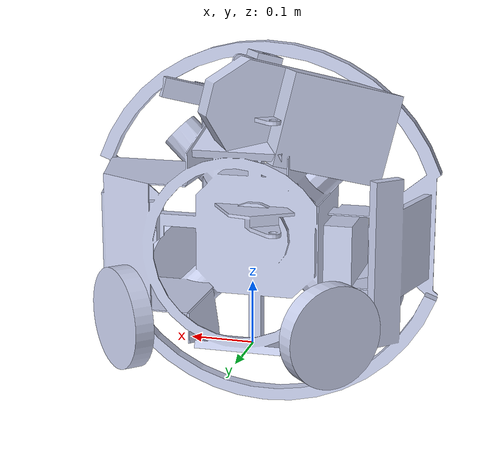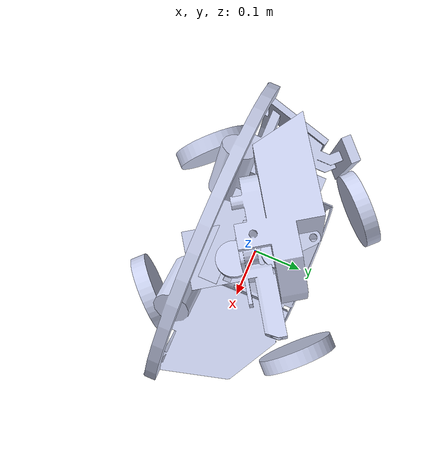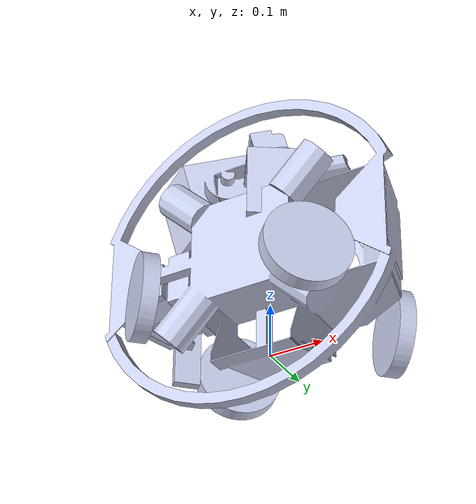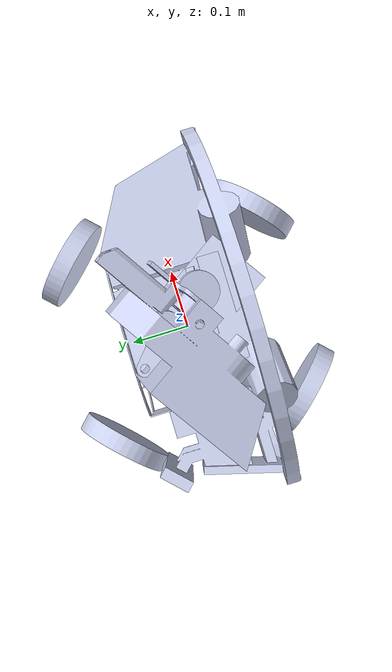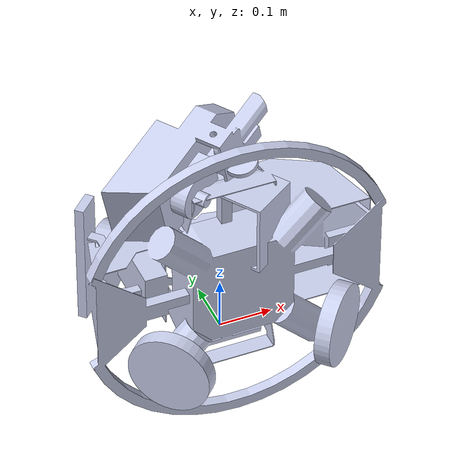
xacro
<?xml version="1.0" encoding="UTF-8"?>
<robot xmlns:xacro="http://wiki.ros.org/xacro" name="omni_infantry">

  <!-- Use this if parameters are set from the launch file, otherwise delete -->
  <xacro:arg name="prefix" default="" />

  <xacro:arg name="use_mock_hardware" default="false" />
  <xacro:arg name="mock_sensor_commands" default="false" />
  <xacro:arg name="sim_gazebo_classic" default="false" />
  <xacro:arg name="sim_gazebo" default="false" />
  <xacro:arg name="simulation_controllers" default="" />

  <xacro:include
    filename="$(find omni_infantry_description)/urdf/omni_infantry/omni_infantry_description.xacro" />
  <xacro:include
    filename="$(find omni_infantry_description)/urdf/omni_infantry/omni_infantry_macro.ros2_control.xacro" />

  <link name="world" />

  <xacro:omni_infantry prefix="$(arg prefix)" parent="world">
    <origin xyz="0 0 0.17" rpy="0 0 0" />
  </xacro:omni_infantry>

  <xacro:omni_infantry_ros2_control
    name="omni_infantry"
    prefix="$(arg prefix)"
    use_mock_hardware="$(arg use_mock_hardware)"
    mock_sensor_commands="$(arg mock_sensor_commands)"
    sim_gazebo_classic="$(arg sim_gazebo_classic)"
    sim_gazebo="$(arg sim_gazebo)"
    simulation_controllers="$(arg simulation_controllers)" />

</robot>

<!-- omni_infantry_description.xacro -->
<robot xmlns:xacro="http://wiki.ros.org/xacro">

  <xacro:include filename="$(find omni_infantry_description)/urdf/common.xacro" />

  <xacro:macro name="omni_infantry" params="prefix parent *origin">
    <!-- LINKS -->
    <link name="${prefix}omni_infantry">
      <inertial>
        <origin
          xyz="-0.014464583145287 -3.47778019611777E-08 -0.0463018865662903"
          rpy="0 0 0" />
        <mass value="7.38762341423434" />
        <inertia
          ixx="0.0858099715349203"
          ixy="9.06674283545546E-08"
          ixz="0.00463615934367856"
          iyy="0.108320017042519"
          iyz="9.21827441556145E-06"
          izz="0.161187478867477" />
      </inertial>
      <visual>
        <origin
          xyz="0 0 0"
          rpy="-1.570796326794896 0 0" />
        <geometry>
          <mesh filename="package://omni_infantry_description/meshes/omni_infantry.STL" />
        </geometry>
        <material name="">
          <color rgba="0.792156862745098 0.819607843137255 0.933333333333333 1" />
        </material>
      </visual>
      <collision>
        <origin
          xyz="0 0 0"
          rpy="-1.570796326794896 0 0" />
        <geometry>
          <mesh filename="package://omni_infantry_description/meshes/omni_infantry.STL" />
        </geometry>
      </collision>
    </link>

    <link name="${prefix}front_left_wheel_link">
      <inertial>
        <origin
          xyz="-0.0145 0 -1.1102E-16"
          rpy="0 0 0" />
        <mass value="0.53318" />
        <inertia
          ixx="0.0015601"
          ixy="1.0842E-19"
          ixz="3.9211E-20"
          iyy="0.00081744"
          iyz="1.0406E-19"
          izz="0.00081744" />
      </inertial>
      <visual>
        <origin
          xyz="0 0 0"
          rpy="0 0 0" />
        <geometry>
          <mesh filename="package://omni_infantry_description/meshes/front_left_wheel_link.STL" />
        </geometry>
        <material name="">
          <color rgba="0.79216 0.81961 0.93333 1" />
        </material>
      </visual>
      <collision>
        <origin
          xyz="0 0 0"
          rpy="0 0 0" />
        <geometry>
          <mesh filename="package://omni_infantry_description/meshes/front_left_wheel_link.STL" />
        </geometry>
      </collision>
    </link>

    <link name="${prefix}front_right_wheel_link">
      <inertial>
        <origin
          xyz="-0.0145 -1.38777878078145E-17 -1.11022302462516E-16"
          rpy="0 0 0" />
        <mass value="0.533176182602155" />
        <inertia
          ixx="0.00156014015731673"
          ixy="0"
          ixz="9.67092878960191E-20"
          iyy="0.000817436842789067"
          iyz="4.59189434683823E-20"
          izz="0.000817436842789066" />
      </inertial>
      <visual>
        <origin
          xyz="0 0 0"
          rpy="0 0 0" />
        <geometry>
          <mesh filename="package://omni_infantry_description/meshes/front_right_wheel_link.STL" />
        </geometry>
        <material name="">
          <color rgba="0.792156862745098 0.819607843137255 0.933333333333333 1" />
        </material>
      </visual>
      <collision>
        <origin
          xyz="0 0 0"
          rpy="0 0 0" />
        <geometry>
          <mesh filename="package://omni_infantry_description/meshes/front_right_wheel_link.STL" />
        </geometry>
      </collision>
    </link>

    <link name="${prefix}back_left_wheel_link">
      <inertial>
        <origin
          xyz="-0.0145 -1.38777878078145E-17 0"
          rpy="0 0 0" />
        <mass value="0.533176182602155" />
        <inertia
          ixx="0.00156014015731673"
          ixy="0"
          ixz="-1.14198415930064E-20"
          iyy="0.000817436842789067"
          iyz="-5.8057516350459E-20"
          izz="0.000817436842789067" />
      </inertial>
      <visual>
        <origin
          xyz="0 0 0"
          rpy="0 0 0" />
        <geometry>
          <mesh filename="package://omni_infantry_description/meshes/back_left_wheel_link.STL" />
        </geometry>
        <material name="">
          <color rgba="0.792156862745098 0.819607843137255 0.933333333333333 1" />
        </material>
      </visual>
      <collision>
        <origin
          xyz="0 0 0"
          rpy="0 0 0" />
        <geometry>
          <mesh filename="package://omni_infantry_description/meshes/back_left_wheel_link.STL" />
        </geometry>
      </collision>
    </link>

    <link name="${prefix}back_right_wheel_link">
      <inertial>
        <origin
          xyz="-0.0145 2.77555756156289E-17 -1.11022302462516E-16"
          rpy="0 0 0" />
        <mass
          value="0.533176182602155" />
        <inertia
          ixx="0.00156014015731673"
          ixy="-5.42101086242752E-20"
          ixz="-2.99471370445972E-20"
          iyy="0.000817436842789066"
          iyz="8.52095872708936E-20"
          izz="0.000817436842789066" />
      </inertial>
      <visual>
        <origin
          xyz="0 0 0"
          rpy="0 0 0" />
        <geometry>
          <mesh filename="package://omni_infantry_description/meshes/back_right_wheel_link.STL" />
        </geometry>
        <material name="">
          <color rgba="0.792156862745098 0.819607843137255 0.933333333333333 1" />
        </material>
      </visual>
      <collision>
        <origin
          xyz="0 0 0"
          rpy="0 0 0" />
        <geometry>
          <mesh filename="package://omni_infantry_description/meshes/back_right_wheel_link.STL" />
        </geometry>
      </collision>
    </link>

    <link name="${prefix}yaw_link">
      <inertial>
        <origin
          xyz="-0.000418768299019823 -3.85108611666851E-16 -0.0356697610188732"
          rpy="0 0 0" />
        <mass value="0.296006965244182" />
        <inertia
          ixx="0.00245101679694452"
          ixy="-4.33680868994202E-19"
          ixz="1.00776769706155E-05"
          iyy="0.00145725788442021"
          iyz="6.68308995383643E-19"
          izz="0.00136511673062511" />
      </inertial>
      <visual>
        <origin
          xyz="0 0 0"
          rpy="-1.570796326794896 0 0" />
        <geometry>
          <mesh filename="package://omni_infantry_description/meshes/yaw_link.STL" />
        </geometry>
        <material name="">
          <color rgba="0.792156862745098 0.819607843137255 0.933333333333333 1" />
        </material>
      </visual>
      <collision>
        <origin
          xyz="0 0 0"
          rpy="-1.570796326794896 0 0" />
        <geometry>
          <mesh filename="package://omni_infantry_description/meshes/yaw_link.STL" />
        </geometry>
      </collision>
    </link>

    <link name="${prefix}pitch_link">
      <inertial>
        <origin
          xyz="-0.0540675175179778 -5.25311614346657E-09 0.0537776989933929"
          rpy="0 0 0" />
        <mass value="2.85600268929187" />
        <inertia
          ixx="0.0064336238659403"
          ixy="1.21832161083453E-10"
          ixz="0.00134212238936282"
          iyy="0.0129875963565574"
          iyz="3.72634163942098E-10"
          izz="0.0149318473098399" />
      </inertial>
      <visual>
        <origin
          xyz="0 0 0"
          rpy="-1.570796326794896 0 0" />
        <geometry>
          <mesh filename="package://omni_infantry_description/meshes/pitch_link.STL" />
        </geometry>
        <material name="">
          <color rgba="0.792156862745098 0.819607843137255 0.933333333333333 1" />
        </material>
      </visual>
      <collision>
        <origin
          xyz="0 0 0"
          rpy="-1.570796326794896 0 0" />
        <geometry>
          <mesh filename="package://omni_infantry_description/meshes/pitch_link.STL" />
        </geometry>
      </collision>
    </link>

    <link name="${prefix}left_launch_link">
      <inertial>
        <origin
          xyz="-2.77555756156289E-17 6.93889390390723E-18 -0.00484999999999991"
          rpy="0 0 0" />
        <mass value="0.0265195187658292" />
        <inertia
          ixx="5.9775879282138E-06"
          ixy="-4.67165284815436E-22"
          ixz="6.35274710440725E-22"
          iyy="5.97758792821379E-06"
          iyz="1.29826492595911E-21"
          izz="1.15393056029814E-05" />
      </inertial>
      <visual>
        <origin
          xyz="0 0 0"
          rpy="0 0 0" />
        <geometry>
          <mesh filename="package://omni_infantry_description/meshes/left_launch_link.STL" />
        </geometry>
        <material name="">
          <color rgba="0.792156862745098 0.819607843137255 0.933333333333333 1" />
        </material>
      </visual>
      <collision>
        <origin
          xyz="0 0 0"
          rpy="0 0 0" />
        <geometry>
          <mesh filename="package://omni_infantry_description/meshes/left_launch_link.STL" />
        </geometry>
      </collision>
    </link>

    <link name="${prefix}right_launch_link">
      <inertial>
        <origin
          xyz="2.77555756156289E-17 1.73472347597681E-18 -0.00484999999999991"
          rpy="0 0 0" />
        <mass value="0.0265195187658292" />
        <inertia
          ixx="5.9775879282138E-06"
          ixy="-3.76709637678514E-22"
          ixz="1.05879118406788E-22"
          iyy="5.97758792821379E-06"
          iyz="1.4929471988187E-22"
          izz="1.15393056029814E-05" />
      </inertial>
      <visual>
        <origin
          xyz="0 0 0"
          rpy="0 0 0" />
        <geometry>
          <mesh filename="package://omni_infantry_description/meshes/right_launch_link.STL" />
        </geometry>
        <material name="">
          <color rgba="0.792156862745098 0.819607843137255 0.933333333333333 1" />
        </material>
      </visual>
      <collision>
        <origin
          xyz="0 0 0"
          rpy="0 0 0" />
        <geometry>
          <mesh filename="package://omni_infantry_description/meshes/right_launch_link.STL" />
        </geometry>
      </collision>
    </link>
    <!-- END LINKS -->

    <joint name="${prefix}omni_infantry_base" type="fixed">
      <xacro:insert_block name="origin" />
      <parent link="${parent}" />
      <child link="${prefix}omni_infantry" />
    </joint>

    <joint name="${prefix}front_left_wheel" type="continuous">
      <origin
        xyz="0.16717772074203 0.167177720742029 -0.0906999999999999"
        rpy="0 0 0.785398163397448" />
      <parent link="${prefix}omni_infantry" />
      <child link="${prefix}front_left_wheel_link" />
      <axis xyz="1 0 0" />
    </joint>

    <joint name="${prefix}front_right_wheel" type="continuous">
      <origin
        xyz="0.16717772074203 -0.167177720742029 -0.0909700000000002"
        rpy="0 0 -0.785398163397448" />
      <parent link="${prefix}omni_infantry" />
      <child link="${prefix}front_right_wheel_link" />
      <axis xyz="1 0 0" />
    </joint>

    <joint name="${prefix}back_left_wheel" type="continuous">
      <origin
        xyz="-0.167177720742029 0.167177720742029 -0.0909700000000001"
        rpy="0 0 2.35619449019234" />
      <parent link="${prefix}omni_infantry" />
      <child link="${prefix}back_left_wheel_link" />
      <axis xyz="-1 0 0" />
    </joint>

    <joint name="${prefix}back_right_wheel" type="continuous">
      <origin
        xyz="-0.16717772074203 -0.16717772074203 -0.0907"
        rpy="0 0 -2.35619449019235" />
      <parent link="${prefix}omni_infantry" />
      <child link="${prefix}back_right_wheel_link" />
      <axis xyz="-1 0 0" />
    </joint>

    <joint name="${prefix}yaw" type="continuous">
      <origin
        xyz="0 0 0.1136"
        rpy="0 0 0.58626" />
      <parent link="${prefix}omni_infantry" />
      <child link="${prefix}yaw_link" />
      <axis xyz="0 0 -1" />
    </joint>

    <joint name="${prefix}pitch" type="revolute">
      <origin
        xyz="0 0 0.0934"
        rpy="0 -0.25743 0" />
      <parent link="${prefix}yaw_link" />
      <child link="${prefix}pitch_link" />
      <axis xyz="0 -1 0" />
      <limit
        lower="-1"
        upper="0.7"
        effort="0"
        velocity="0" />
    </joint>

    <joint name="${prefix}left_launch" type="continuous">
      <origin
        xyz="0.013 0.03625 0.0107"
        rpy="0 0 0" />
      <parent link="${prefix}pitch_link" />
      <child link="${prefix}left_launch_link" />
      <axis xyz="0 0 -1" />
    </joint>

    <joint name="${prefix}right_launch" type="continuous">
      <origin
        xyz="0.013 -0.03625 0.0107"
        rpy="0 0 0" />
      <parent link="${prefix}pitch_link" />
      <child link="${prefix}right_launch_link" />
      <axis xyz="0 0 -1" />
    </joint>

  </xacro:macro>
</robot>
